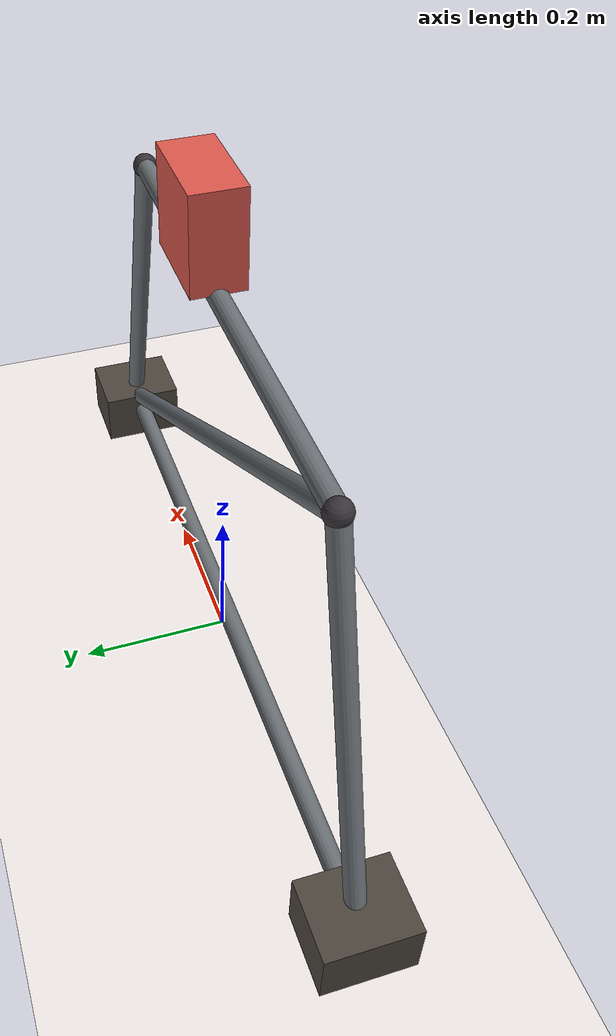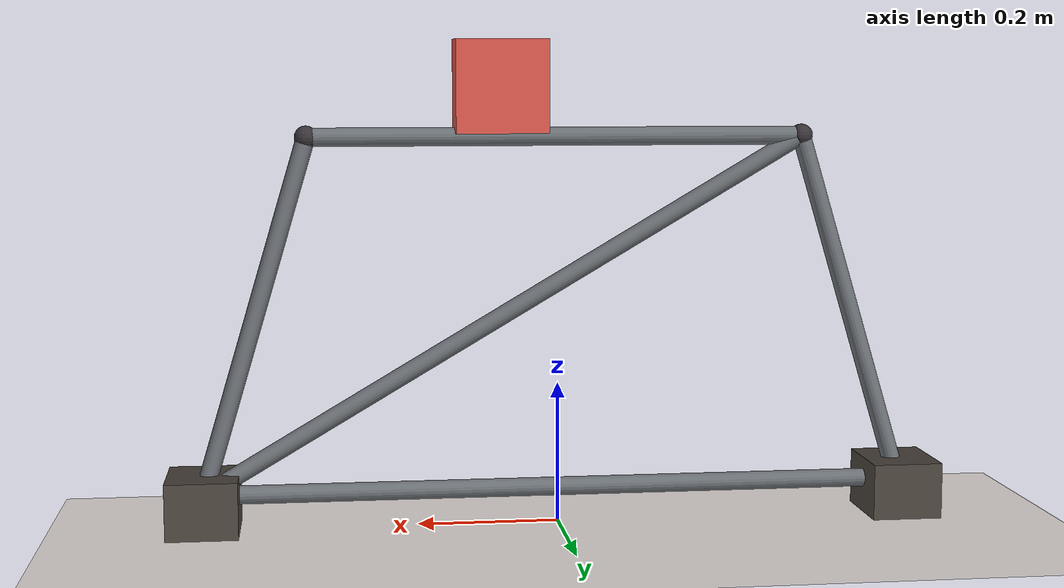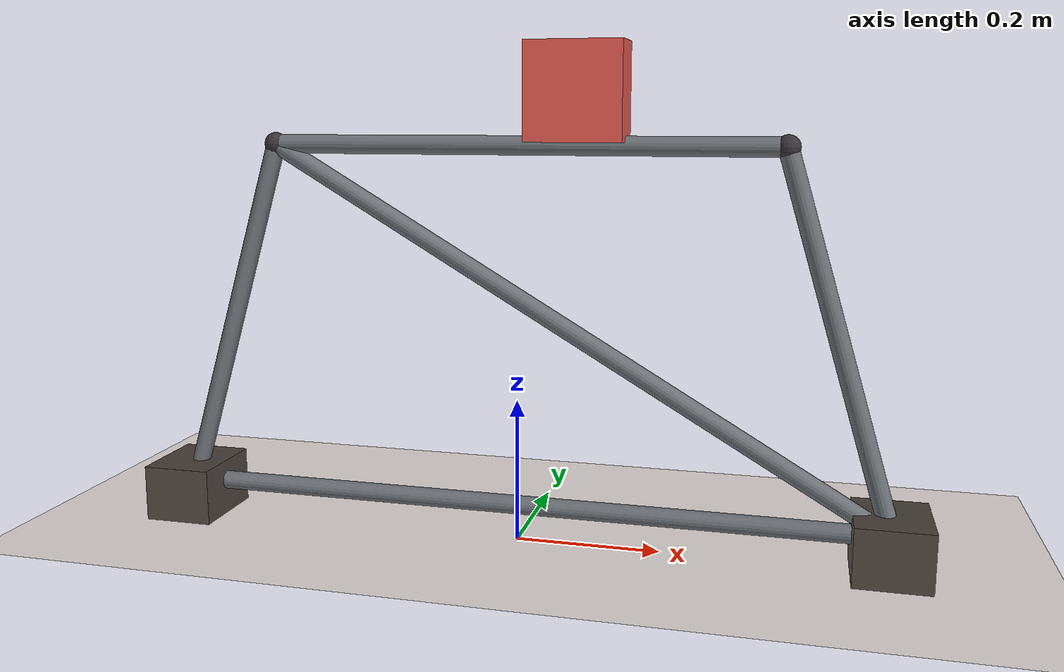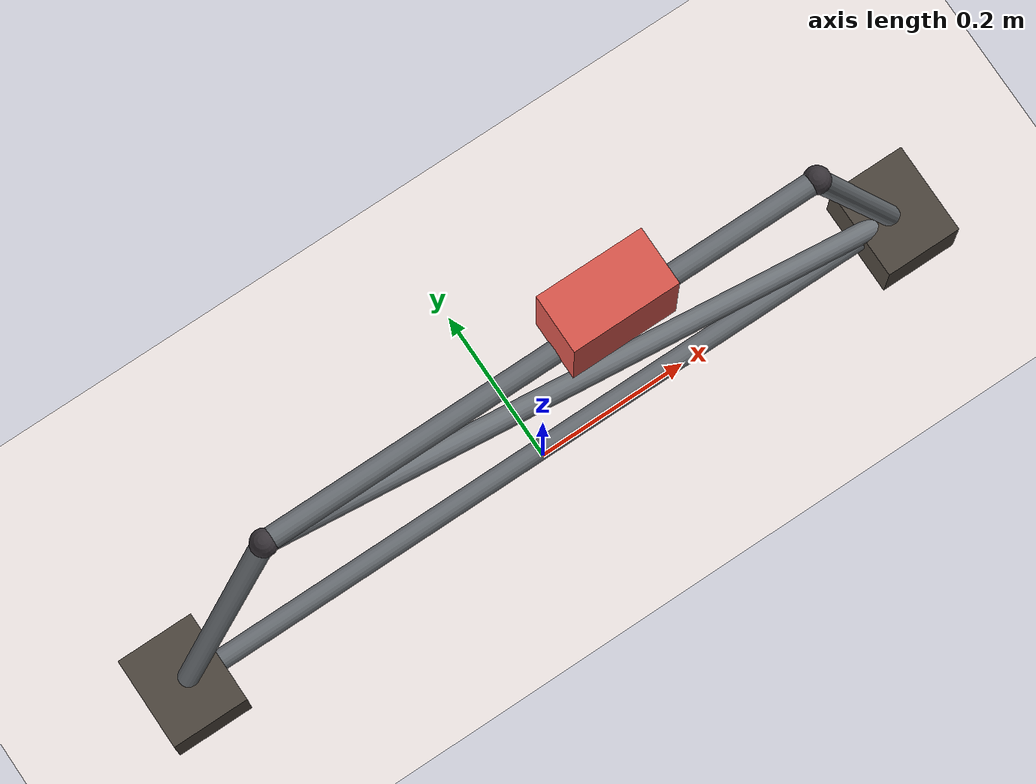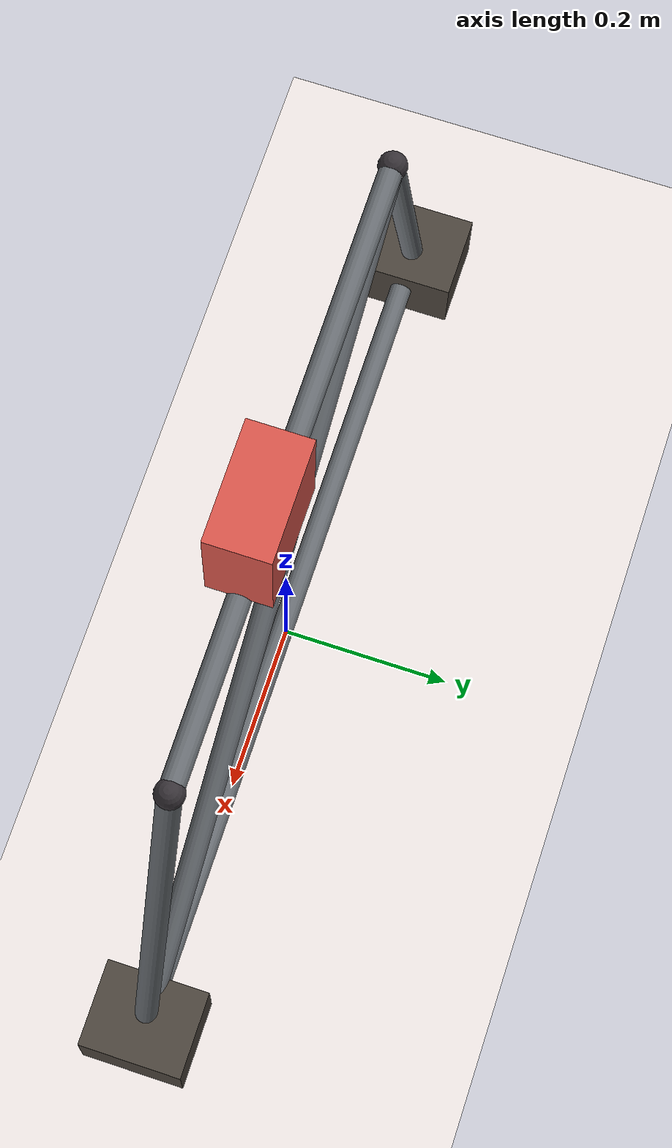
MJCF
<mujoco model="truss_collapse">
  <!-- 4-bar trapezoid + diagonal C-B (removed at t≈0.8 s in render). -->
  <compiler angle="radian" coordinate="local" autolimits="true"/>
  <option timestep="0.001" gravity="0 0 -9.81" integrator="implicitfast"
          impratio="3" cone="elliptic"/>

  <visual>
    <headlight diffuse="0 0 0" ambient="0.50 0.48 0.55" specular="0 0 0"/>
    <rgba haze="0.94 0.91 0.90 1"/>
    <global azimuth="120" elevation="-15" offwidth="1920" offheight="1080" fovy="38"/>
    <quality shadowsize="8192" offsamples="8"/>
    <map shadowclip="6" shadowscale="0.7"/>
  </visual>

  <asset>
    <texture type="skybox" builtin="flat"
             rgb1="0.74 0.68 0.86" rgb2="0.74 0.68 0.86"
             width="512" height="512" mark="none" markrgb="0 0 0"/>
    <material name="floor_mat" rgba="0.94 0.91 0.90 1" specular="0" shininess="0"/>
    <material name="support_mat" rgba="0.30 0.27 0.24 1" specular="0.1" shininess="0.1"/>
    <material name="bar_mat" rgba="0.42 0.44 0.46 1" specular="0.15" shininess="0.15"/>
    <material name="joint_pin" rgba="0.22 0.20 0.22 1" specular="0.25" shininess="0.25"/>
    <material name="payload" rgba="0.86 0.34 0.30 1" specular="0.35" shininess="0.4"/>
  </asset>

  <default>
    <geom contype="0" conaffinity="0" friction="0.6 0.04 0.001"/>
  </default>

  <worldbody>
    <light pos="0 0 12" dir="-0.30 0.55 -1" directional="true" castshadow="true"
           diffuse="0.85 0.82 0.78" specular="0.15 0.15 0.15"/>
    <light pos="0 0 8" dir="0.40 -0.30 -1" directional="true" castshadow="false"
           diffuse="0.28 0.28 0.34" specular="0 0 0"/>

    <geom name="floor" type="plane" size="40 40 0.1" material="floor_mat"
          contype="1" conaffinity="1"/>

    <geom type="box" size="0.05 0.06 0.0400" pos="-0.5000 0 0.0400"
          material="support_mat"/>
    <geom type="box" size="0.05 0.06 0.0400" pos="0.5000 0 0.0400"
          material="support_mat"/>

    <geom name="bar_AB" type="capsule"
          fromto="-0.5000 0 0.0500  0.5000 0 0.0500"
          size="0.013" material="bar_mat"/>

    <!-- Open chain A-C-D-B with hinges at A, C, D -->
    <body name="leg_AC" pos="-0.5000 0 0.0500">
      <joint name="h_A" type="hinge" axis="0 1 0" damping="0.35"/>
      <geom name="bar_AC" type="capsule" fromto="0 0 0  0.1500 0 0.5000" size="0.013"
            mass="0.06" material="bar_mat"/>
      <geom type="sphere" size="0.016" material="joint_pin" mass="0.008"
            contype="0" conaffinity="0"/>

      <body name="coupler" pos="0.1500 0 0.5000">
        <joint name="h_C" type="hinge" axis="0 1 0" damping="0.35"/>
        <geom name="bar_CD" type="capsule" fromto="0 0 0  0.7000 0 0.0000" size="0.013"
              mass="0.042" material="bar_mat"/>
        <geom type="sphere" size="0.016" material="joint_pin" mass="0.008"
              contype="0" conaffinity="0"/>
        <site name="s_C" pos="0 0 0" size="0.001"/>
        <geom name="bar_CB" type="capsule" fromto="0 0 0  0.8500 0 -0.5000" size="0.013"
              mass="0.001" material="bar_mat" contype="0" conaffinity="0"/>
        <geom name="load" type="box"
              pos="0.4300 0 0.0700"
              size="0.065 0.035 0.065" mass="1.05" material="payload"
              contype="1" conaffinity="1"
              solref="0.003 1" solimp="0.95 0.99 0.001"/>

        <body name="leg_DB" pos="0.7000 0 0.0000">
          <joint name="h_D" type="hinge" axis="0 1 0" damping="0.35"/>
          <geom name="bar_BD" type="capsule" fromto="0 0 0  0.1500 0 -0.5000" size="0.013"
                mass="0.06" material="bar_mat"/>
          <geom type="sphere" size="0.016" material="joint_pin" mass="0.008"
                contype="0" conaffinity="0"/>
          <geom type="sphere" pos="0.1500 0 -0.5000" size="0.016" material="joint_pin"
                mass="0.008" contype="0" conaffinity="0"/>
        </body>
      </body>
    </body>

    <!-- Fixed pin at support B (closure point for the open chain) -->
    <body name="anchor_B" pos="0.5000 0 0.0500">
      <geom type="sphere" size="0.016" material="joint_pin" mass="0.001"
            contype="0" conaffinity="0"/>
      <site name="s_B" pos="0 0 0" size="0.001"/>
    </body>

    <camera name="cam" pos="0.00 -1.55 0.28" fovy="44"
            xyaxes="1 0 0  0 0 1"/>
  </worldbody>

  <tendon>
    <!-- Critical diagonal C-B: triangulates frame until removed at render time. -->
    <spatial name="diag_CB" stiffness="6500.0" damping="2.5"
             springlength="0.98615" width="0.001"
             rgba="0.42 0.44 0.46 0" limited="false">
      <site site="s_C"/>
      <site site="s_B"/>
    </spatial>
  </tendon>

  <equality>
    <connect name="pin_B" body1="leg_DB" body2="anchor_B"
             anchor="0.1500 0 -0.5000"
             solref="0.002 1" solimp="0.99 0.999 0.0001"/>
  </equality>
</mujoco>
